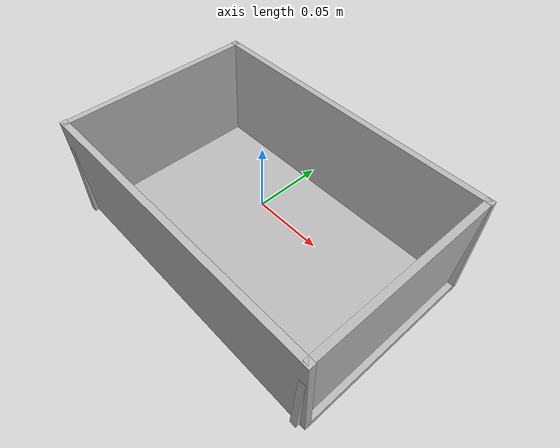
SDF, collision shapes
<?xml version="1.0" ?>
<!-- |    This document was autogenerated by xacro from container_amuse_white_issue7265_body_low.sdf.xacro | -->
<!-- |    EDITING THIS FILE BY HAND IS NOT RECOMMENDED                                 | -->
<sdf version="1.6" xmlns:drake="drake.mit.edu">
  <model name="container_amuse_white_issue7265_body_low">
    <link name="container_amuse_white_issue7265_body_low">
      <pose>0 0 0 0 0 0</pose>
      <inertial>
        <pose>0 0 -0.0124 0 0 0</pose>
        <mass>0.0755</mass>
        <inertia>
          <ixx> 0.000310</ixx>
          <ixy> 0.000000</ixy>
          <ixz> 0.000000</ixz>
          <iyy> 0.000585</iyy>
          <iyz> 0.000000</iyz>
          <izz> 0.000762</izz>
        </inertia>
      </inertial>
      <visual name="container_amuse_white_issue7265_body_low">
        <!-- The orientation of the object in the glTF is not upright,
        so we must rotate by 90 degress here to make it so. -->
        <pose>0 0 0 -1.5708 0 0</pose>
        <geometry>
          <mesh>
            <uri>/data/kylehatch/lbm_eval/lbm_eval_models/kitchen_accessories/bins/assets/container_amuse_white_issue7265_body_low.gltf</uri>
            <scale>1.0 1.0 1.0</scale>
          </mesh>
        </geometry>
      </visual>
      <!-- Left wall collision -->
      <collision name="container_amuse_white_issue7265_body_low_left_wall">
        <pose>-0.115 0 0 0 -0.05 0</pose>
        <geometry>
          <box>
            <size>0.005 0.155 0.084</size>
          </box>
        </geometry>
        <drake:proximity_properties>
          <drake:mu_dynamic>0.3</drake:mu_dynamic>
          <drake:mu_static>0.3</drake:mu_static>
          <drake:rigid_hydroelastic/>
        </drake:proximity_properties>
      </collision>
      <!-- Right wall collision -->
      <collision name="container_amuse_white_issue7265_body_low_right_wall">
        <pose>0.115 0 0 0 0.05 0</pose>
        <geometry>
          <box>
            <size>0.005 0.155 0.084</size>
          </box>
        </geometry>
        <drake:proximity_properties>
          <drake:mu_dynamic>0.3</drake:mu_dynamic>
          <drake:mu_static>0.3</drake:mu_static>
          <drake:rigid_hydroelastic/>
        </drake:proximity_properties>
      </collision>
      <!-- Bottom Wall collision -->
      <collision name="container_amuse_white_issue7265_body_low_bottom_wall">
        <pose>0 0.074 0 -0.05 0 0</pose>
        <geometry>
          <box>
            <size>0.24 0.005 0.084</size>
          </box>
        </geometry>
        <drake:proximity_properties>
          <drake:mu_dynamic>0.3</drake:mu_dynamic>
          <drake:mu_static>0.3</drake:mu_static>
          <drake:rigid_hydroelastic/>
        </drake:proximity_properties>
      </collision>
      <!-- Top wall collision -->
      <collision name="container_amuse_white_issue7265_body_low_top_wall">
        <pose>0 -0.074 0 0.05 0 0</pose>
        <geometry>
          <box>
            <size>0.24 0.005 0.084</size>
          </box>
        </geometry>
        <drake:proximity_properties>
          <drake:mu_dynamic>0.3</drake:mu_dynamic>
          <drake:mu_static>0.3</drake:mu_static>
          <drake:rigid_hydroelastic/>
        </drake:proximity_properties>
      </collision>
      <!-- Floor collision -->
      <collision name="container_amuse_white_issue7265_body_low_floor">
        <pose>0 0 -0.040 0 0 0</pose>
        <geometry>
          <box>
            <size>0.24 0.142927 0.005</size>
          </box>
        </geometry>
        <drake:proximity_properties>
          <drake:mu_dynamic>0.3</drake:mu_dynamic>
          <drake:mu_static>0.3</drake:mu_static>
          <drake:rigid_hydroelastic/>
        </drake:proximity_properties>
      </collision>
    </link>
    <frame name="origin">
      <pose relative_to="container_amuse_white_issue7265_body_low">0 0 0 0 0 0</pose>
    </frame>
    <frame name="bounding_box_center__z_up__x_orthogonal_to_shorter_face">
      <pose relative_to="container_amuse_white_issue7265_body_low">0 0 0 0 0 0</pose>
    </frame>
    <frame name="bottom">
      <pose relative_to="container_amuse_white_issue7265_body_low">0 0 -0.0425 0 0 0</pose>
    </frame>
    <frame name="center">
      <pose relative_to="container_amuse_white_issue7265_body_low">0 0 0 0 0 0</pose>
    </frame>
    <frame name="at_rest_right_side_up">
      <pose relative_to="container_amuse_white_issue7265_body_low">0 0 -0.0425 0 0 0</pose>
    </frame>
  </model>
</sdf>
